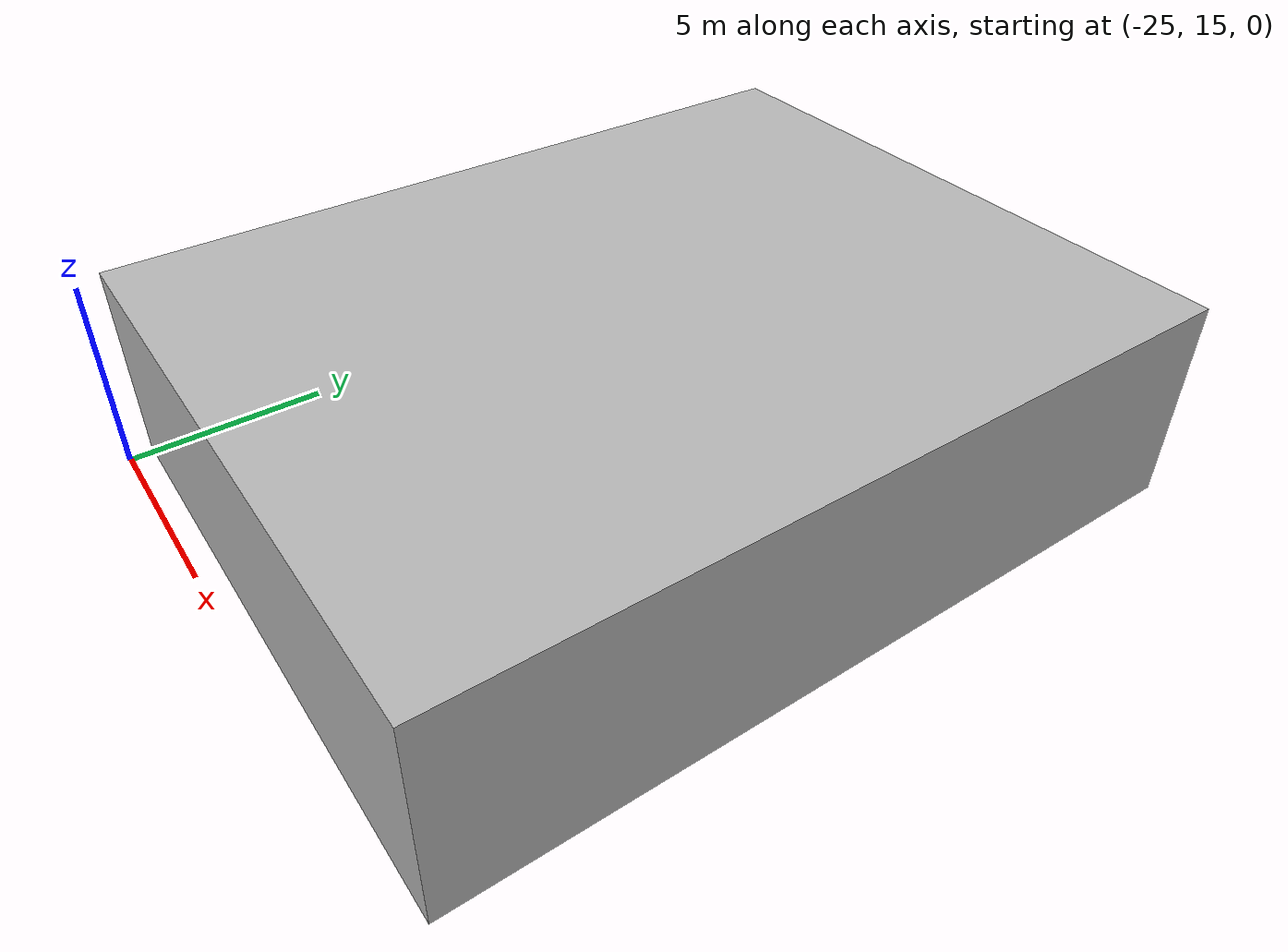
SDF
<?xml version="1.0"?>
<sdf version="1.6">
  <model name="urban_service_room_emitter">
    <static>true</static>
    <pose>0 0 0 0 0 0</pose>
    <link name="link">
      <pose>-17 25 3 0 0 0</pose>
      <visual name="visual">
        <geometry><box><size>15.0 19.0 5.0</size></box></geometry>
      </visual>
    </link>
    <plugin
      filename="libGasEmitterDetectorPlugin.so"
      name="subt::GasEmitter">
      <emitter>
        <type>gas</type>
        <pose>-1 7 3 0 0 0</pose>
        <geometry><box><size>15.0 19.0 6.0</size></box></geometry>
      </emitter>
    </plugin>
  </model>
</sdf>
